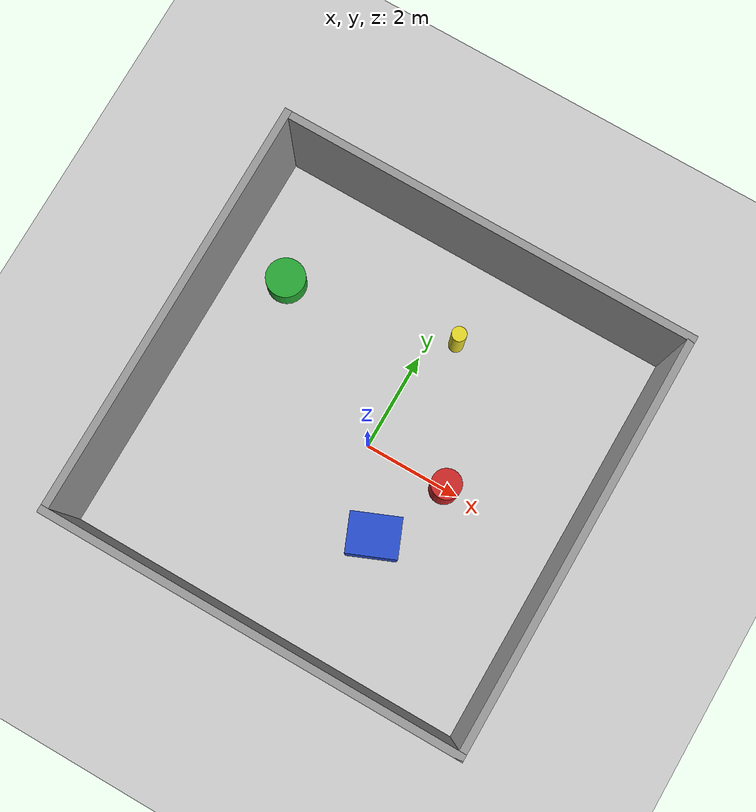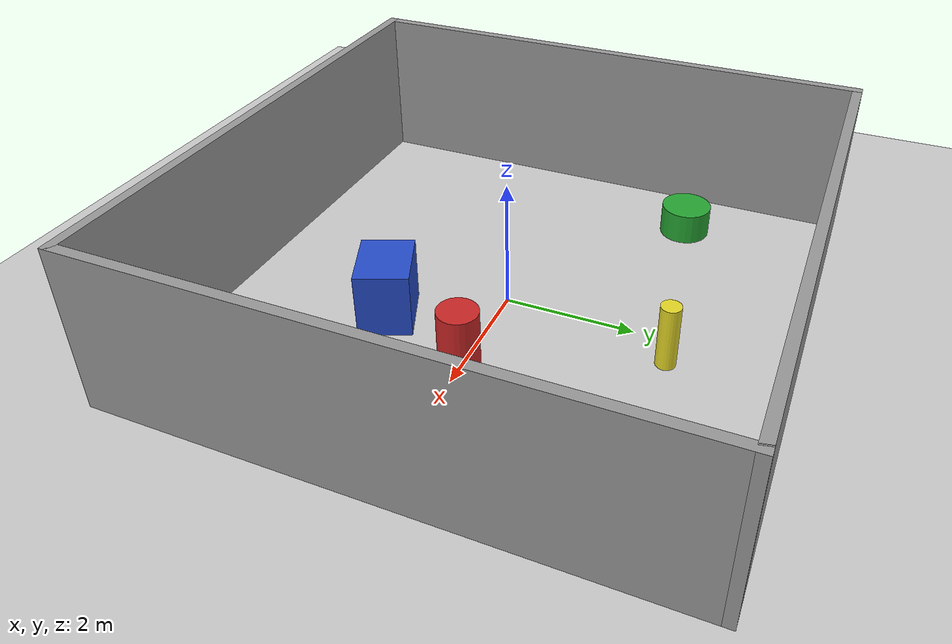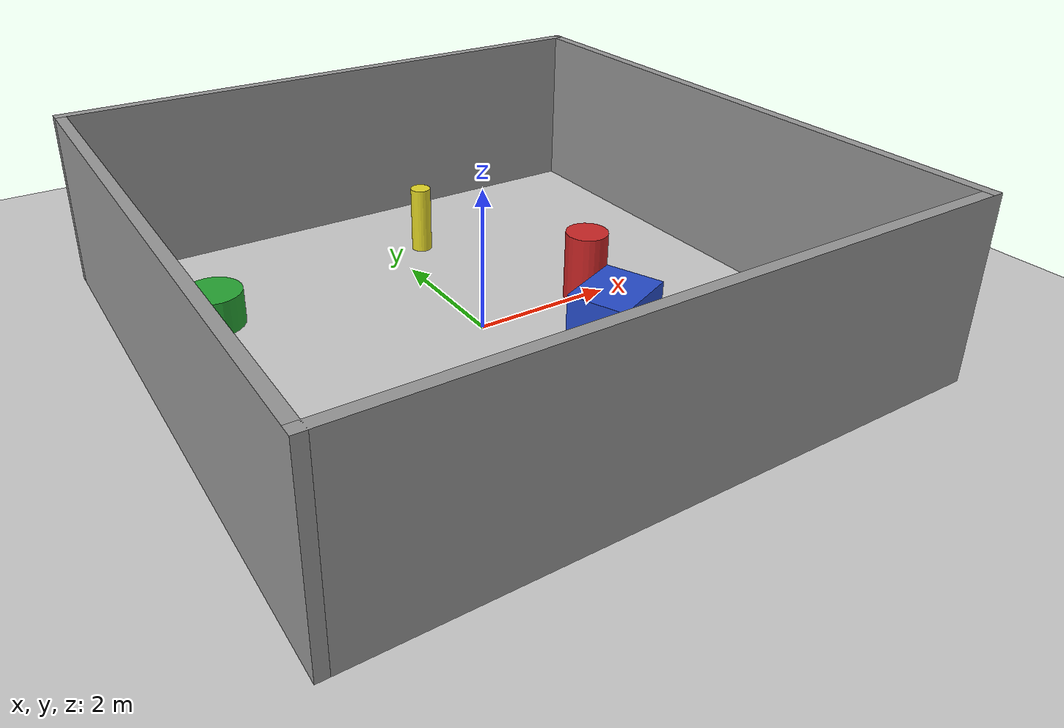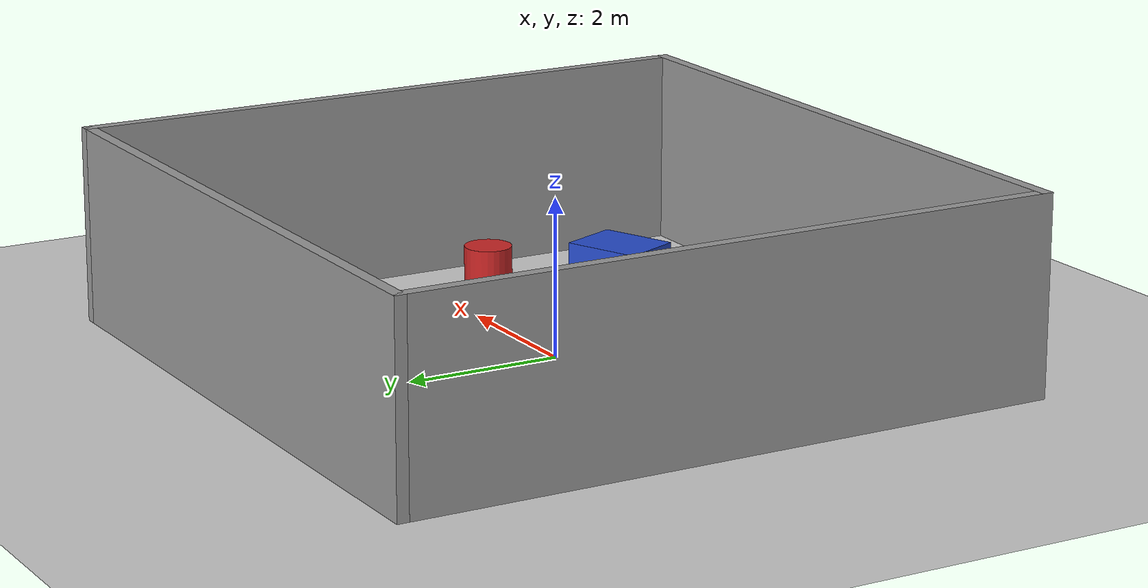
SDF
<sdf version='1.7'>
  <world name='default'>
    <light name='sun' type='directional'>
      <cast_shadows>1</cast_shadows>
      <pose>0 0 10 0 -0 0</pose>
      <diffuse>0.8 0.8 0.8 1</diffuse>
      <specular>0.2 0.2 0.2 1</specular>
      <attenuation>
        <range>1000</range>
        <constant>0.9</constant>
        <linear>0.01</linear>
        <quadratic>0.001</quadratic>
      </attenuation>
      <direction>-0.5 0.1 -0.9</direction>
      <spot>
        <inner_angle>0</inner_angle>
        <outer_angle>0</outer_angle>
        <falloff>0</falloff>
      </spot>
    </light>
    <model name='ground_plane'>
      <static>1</static>
      <link name='link'>
        <collision name='collision'>
          <geometry>
            <plane>
              <normal>0 0 1</normal>
              <size>100 100</size>
            </plane>
          </geometry>
          <surface>
            <contact>
              <collide_bitmask>65535</collide_bitmask>
              <ode/>
            </contact>
            <friction>
              <ode>
                <mu>100</mu>
                <mu2>50</mu2>
              </ode>
              <torsional>
                <ode/>
              </torsional>
            </friction>
            <bounce/>
          </surface>
          <max_contacts>10</max_contacts>
        </collision>
        <visual name='visual'>
          <cast_shadows>0</cast_shadows>
          <geometry>
            <plane>
              <normal>0 0 1</normal>
              <size>100 100</size>
            </plane>
          </geometry>
          <material>
            <script>
              <uri>file://media/materials/scripts/gazebo.material</uri>
              <name>Gazebo/FlatBeige</name>
            </script>
          </material>
        </visual>
        <self_collide>0</self_collide>
        <enable_wind>0</enable_wind>
        <kinematic>0</kinematic>
      </link>
    </model>
    <gravity>0 0 -9.8</gravity>
    <magnetic_field>6e-06 2.3e-05 -4.2e-05</magnetic_field>
    <atmosphere type='adiabatic'/>
    <physics type='ode'>
      <max_step_size>0.001</max_step_size>
      <real_time_factor>1</real_time_factor>
      <real_time_update_rate>1000</real_time_update_rate>
    </physics>
    <scene>
      <ambient>0.4 0.4 0.4 1</ambient>
      <background>0.7 0.7 0.7 1</background>
      <shadows>1</shadows>
    </scene>
    <wind/>
    <spherical_coordinates>
      <surface_model>EARTH_WGS84</surface_model>
      <latitude_deg>0</latitude_deg>
      <longitude_deg>0</longitude_deg>
      <elevation>0</elevation>
      <heading_deg>0</heading_deg>
    </spherical_coordinates>
    <model name='Untitled'>
      <pose>0.015 0.085 0 0 -0 0</pose>
      <link name='Wall_0'>
        <collision name='Wall_0_Collision'>
          <geometry>
            <box>
              <size>8.5 0.15 2.5</size>
            </box>
          </geometry>
          <pose>0 0 1.25 0 -0 0</pose>
          <max_contacts>10</max_contacts>
          <surface>
            <contact>
              <ode/>
            </contact>
            <bounce/>
            <friction>
              <torsional>
                <ode/>
              </torsional>
              <ode/>
            </friction>
          </surface>
        </collision>
        <visual name='Wall_0_Visual'>
          <pose>0 0 1.25 0 -0 0</pose>
          <geometry>
            <box>
              <size>8.5 0.15 2.5</size>
            </box>
          </geometry>
          <material>
            <script>
              <uri>file://media/materials/scripts/gazebo.material</uri>
              <name>Gazebo/Grey</name>
            </script>
            <ambient>1 1 1 1</ambient>
          </material>
          <meta>
            <layer>0</layer>
          </meta>
        </visual>
        <pose>-0 -4.175 0 0 -0 3.14159</pose>
        <self_collide>0</self_collide>
        <enable_wind>0</enable_wind>
        <kinematic>0</kinematic>
      </link>
      <link name='Wall_2'>
        <collision name='Wall_2_Collision'>
          <geometry>
            <box>
              <size>8.5 0.15 2.5</size>
            </box>
          </geometry>
          <pose>0 0 1.25 0 -0 0</pose>
          <max_contacts>10</max_contacts>
          <surface>
            <contact>
              <ode/>
            </contact>
            <bounce/>
            <friction>
              <torsional>
                <ode/>
              </torsional>
              <ode/>
            </friction>
          </surface>
        </collision>
        <visual name='Wall_2_Visual'>
          <pose>0 0 1.25 0 -0 0</pose>
          <geometry>
            <box>
              <size>8.5 0.15 2.5</size>
            </box>
          </geometry>
          <material>
            <script>
              <uri>file://media/materials/scripts/gazebo.material</uri>
              <name>Gazebo/Grey</name>
            </script>
            <ambient>1 1 1 1</ambient>
          </material>
          <meta>
            <layer>0</layer>
          </meta>
        </visual>
        <pose>4.175 -0 0 0 -0 1.5708</pose>
        <self_collide>0</self_collide>
        <enable_wind>0</enable_wind>
        <kinematic>0</kinematic>
      </link>
      <link name='Wall_3'>
        <collision name='Wall_3_Collision'>
          <geometry>
            <box>
              <size>8.5 0.15 2.5</size>
            </box>
          </geometry>
          <pose>0 0 1.25 0 -0 0</pose>
          <max_contacts>10</max_contacts>
          <surface>
            <contact>
              <ode/>
            </contact>
            <bounce/>
            <friction>
              <torsional>
                <ode/>
              </torsional>
              <ode/>
            </friction>
          </surface>
        </collision>
        <visual name='Wall_3_Visual'>
          <pose>0 0 1.25 0 -0 0</pose>
          <geometry>
            <box>
              <size>8.5 0.15 2.5</size>
            </box>
          </geometry>
          <material>
            <script>
              <uri>file://media/materials/scripts/gazebo.material</uri>
              <name>Gazebo/Grey</name>
            </script>
            <ambient>1 1 1 1</ambient>
          </material>
          <meta>
            <layer>0</layer>
          </meta>
        </visual>
        <pose>-0 4.175 0 0 -0 3.14159</pose>
        <self_collide>0</self_collide>
        <enable_wind>0</enable_wind>
        <kinematic>0</kinematic>
      </link>
      <link name='Wall_4'>
        <collision name='Wall_4_Collision'>
          <geometry>
            <box>
              <size>8.5 0.15 2.5</size>
            </box>
          </geometry>
          <pose>0 0 1.25 0 -0 0</pose>
          <max_contacts>10</max_contacts>
          <surface>
            <contact>
              <ode/>
            </contact>
            <bounce/>
            <friction>
              <torsional>
                <ode/>
              </torsional>
              <ode/>
            </friction>
          </surface>
        </collision>
        <visual name='Wall_4_Visual'>
          <pose>0 0 1.25 0 -0 0</pose>
          <geometry>
            <box>
              <size>8.5 0.15 2.5</size>
            </box>
          </geometry>
          <material>
            <script>
              <uri>file://media/materials/scripts/gazebo.material</uri>
              <name>Gazebo/Grey</name>
            </script>
            <ambient>1 1 1 1</ambient>
          </material>
          <meta>
            <layer>0</layer>
          </meta>
        </visual>
        <pose>-4.175 -0 0 0 -0 -1.5708</pose>
        <self_collide>0</self_collide>
        <enable_wind>0</enable_wind>
        <kinematic>0</kinematic>
      </link>
      <static>1</static>
    </model>
    <model name='obstacles'>
      <static>1</static>

      <!-- 圆形障碍物1 -->
      <link name='obs_circle1'>
        <pose>1.7 0.0 0.5 0 0 0</pose>
        <collision name='collision'>
          <geometry>
            <cylinder>
              <radius>0.3</radius>
              <length>1.0</length>
            </cylinder>
          </geometry>
        </collision>
        <visual name='visual'>
          <geometry>
            <cylinder>
              <radius>0.3</radius>
              <length>1.0</length>
            </cylinder>
          </geometry>
          <material>
            <script>
              <uri>file://media/materials/scripts/gazebo.material</uri>
              <name>Gazebo/Red</name>
            </script>
          </material>
        </visual>
      </link>

      <!-- 椭圆障碍物2 -->
      <link name='obs_ellipse2'>
        <pose>-3.0 2.0 0.25 0 0 0.7854</pose> <!-- 45度旋转，圆心高度为0.25 -->
        <collision name='collision'>
          <geometry>
            <cylinder>
              <radius>0.4</radius>
              <length>0.5</length>
            </cylinder>
          </geometry>
        </collision>
        <visual name='visual'>
          <geometry>
            <cylinder>
              <radius>0.4</radius>
              <length>0.5</length>
            </cylinder>
          </geometry>
          <material>
            <script>
              <uri>file://media/materials/scripts/gazebo.material</uri>
              <name>Gazebo/Green</name>
            </script>
          </material>
        </visual>
      </link>

      <!-- 矩形障碍物3 -->
      <link name='obs_rectangle3'>
        <pose>1.0 -1.5 0.5 0 0 0.3927</pose> <!-- -22.5度旋转 -->
        <collision name='collision'>
          <geometry>
            <box>
              <size>1.0 0.8 1.0</size>
            </box>
          </geometry>
        </collision>
        <visual name='visual'>
          <geometry>
            <box>
              <size>1.0 0.8 1.0</size>
            </box>
          </geometry>
          <material>
            <script>
              <uri>file://media/materials/scripts/gazebo.material</uri>
              <name>Gazebo/Blue</name>
            </script>
          </material>
        </visual>
      </link>

      <!-- 圆形障碍物4 -->
      <link name='obs_circle4'>
        <pose>0.5 2.6 0.5 0 0 0</pose>
        <collision name='collision'>
          <geometry>
            <cylinder>
              <radius>0.15</radius>
              <length>1.0</length>
            </cylinder>
          </geometry>
        </collision>
        <visual name='visual'>
          <geometry>
            <cylinder>
              <radius>0.15</radius>
              <length>1.0</length>
            </cylinder>
          </geometry>
          <material>
            <script>
              <uri>file://media/materials/scripts/gazebo.material</uri>
              <name>Gazebo/Yellow</name>
            </script>
          </material>
        </visual>
      </link>
    </model>
    <gui fullscreen='0'>
      <camera name='user_camera'>
        <pose>0.959603 -0.417519 13.7824 3.7e-05 1.5698 1.52605</pose>
        <view_controller>orbit</view_controller>
        <projection_type>perspective</projection_type>
      </camera>
    </gui>
  </world>
</sdf>
